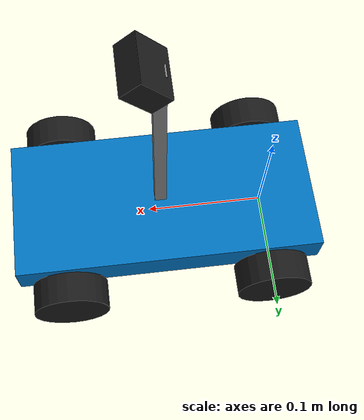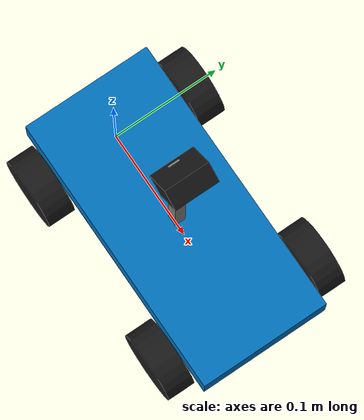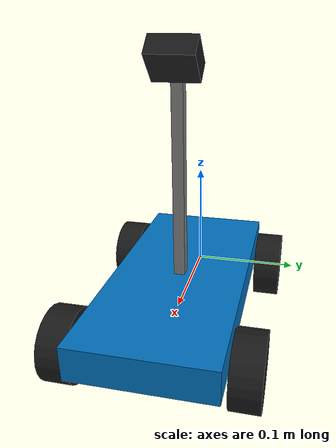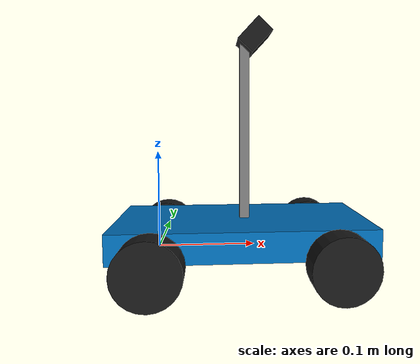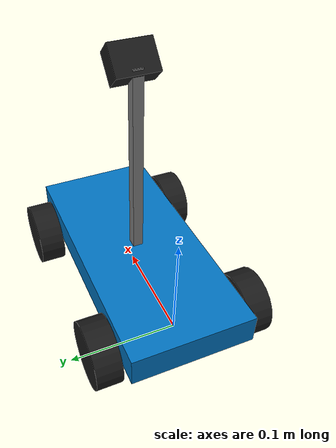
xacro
<?xml version="1.0"?>
<robot name="nxp_cup_car" xmlns:xacro="http://www.ros.org/wiki/xacro">

  <!-- ===== Parameters (measure these on the real car) ===== -->
  <xacro:arg name="camera_type" default="area"/>
  <xacro:arg name="camera_height" default="0.25"/>   <!-- lens above ground, m -->
  <xacro:arg name="camera_x" default="0.10"/>        <!-- lens ahead of rear axle, m -->
  <xacro:arg name="camera_pitch" default="0.75"/>    <!-- tilt down from horizontal, rad -->
  <xacro:arg name="camera_hfov" default="1.6"/>      <!-- horizontal field of view, rad -->
  <xacro:arg name="camera_width" default="320"/>
  <xacro:arg name="camera_height_px" default="240"/>
  <xacro:arg name="camera_rate" default="30"/>

  <xacro:property name="wheel_base" value="0.175"/>       <!-- rear axle to front axle -->
  <xacro:property name="wheel_separation" value="0.150"/> <!-- left to right wheel centre -->
  <xacro:property name="wheel_radius" value="0.032"/>
  <xacro:property name="wheel_width" value="0.025"/>
  <xacro:property name="wheel_mass" value="0.05"/>
  <xacro:property name="steering_limit" value="0.45"/>    <!-- rad, about 26 deg -->

  <xacro:property name="chassis_length" value="0.26"/>
  <xacro:property name="chassis_width" value="0.12"/>
  <xacro:property name="chassis_height" value="0.03"/>
  <xacro:property name="chassis_mass" value="0.9"/>        <!-- incl. battery and boards -->

  <xacro:property name="max_speed" value="3.0"/>
  <xacro:property name="max_accel" value="4.0"/>

  <xacro:property name="cam_h" value="$(arg camera_height)"/>
  <xacro:property name="cam_x" value="$(arg camera_x)"/>
  <xacro:property name="cam_pitch" value="$(arg camera_pitch)"/>
  <xacro:property name="cam_type" value="$(arg camera_type)"/>
  <xacro:if value="${cam_type == 'linescan'}">
    <!-- TSL1401: one row of 128 pixels. A 128 x 1 render with square pixels gives the
         same thin strip of ground the real sensor (63.5 x 55.5 um pixels) sees. -->
    <xacro:property name="img_w" value="128"/>
    <xacro:property name="img_h" value="1"/>
    <xacro:property name="img_rate" value="100"/>
    <xacro:property name="img_format" value="L8"/>
  </xacro:if>
  <xacro:unless value="${cam_type == 'linescan'}">
    <xacro:property name="img_w" value="$(arg camera_width)"/>
    <xacro:property name="img_h" value="$(arg camera_height_px)"/>
    <xacro:property name="img_rate" value="$(arg camera_rate)"/>
    <xacro:property name="img_format" value="R8G8B8"/>
  </xacro:unless>

  <!-- ===== Helpers ===== -->
  <xacro:macro name="box_inertia" params="m x y z">
    <inertia ixx="${m*(y*y+z*z)/12}" ixy="0" ixz="0"
             iyy="${m*(x*x+z*z)/12}" iyz="0" izz="${m*(x*x+y*y)/12}"/>
  </xacro:macro>
  <xacro:macro name="cyl_inertia" params="m r h">
    <!-- cylinder with its axis along the link's y axis (wheel spin axis) -->
    <inertia ixx="${m*(3*r*r+h*h)/12}" ixy="0" ixz="0"
             iyy="${m*r*r/2}" iyz="0" izz="${m*(3*r*r+h*h)/12}"/>
  </xacro:macro>

  <material name="black"><color rgba="0.1 0.1 0.1 1"/></material>
  <material name="blue"><color rgba="0.0 0.45 0.75 1"/></material>
  <material name="grey"><color rgba="0.5 0.5 0.5 1"/></material>

  <!-- ===== Chassis =====
       base_link is the root and sits at the rear axle centre, wheel_radius above
       the ground (standard for Ackermann odometry; Gazebo publishes odom -> base_link). -->

  <link name="base_link">
    <visual>
      <origin xyz="${wheel_base/2} 0 ${chassis_height/2}"/>
      <geometry><box size="${chassis_length} ${chassis_width} ${chassis_height}"/></geometry>
      <material name="blue"/>
    </visual>
    <collision>
      <origin xyz="${wheel_base/2} 0 ${chassis_height/2}"/>
      <geometry><box size="${chassis_length} ${chassis_width} ${chassis_height}"/></geometry>
    </collision>
    <inertial>
      <origin xyz="${wheel_base/2} 0 ${chassis_height/2}"/>
      <mass value="${chassis_mass}"/>
      <xacro:box_inertia m="${chassis_mass}" x="${chassis_length}" y="${chassis_width}" z="${chassis_height}"/>
    </inertial>
  </link>

  <!-- ===== Wheels ===== -->
  <xacro:macro name="wheel_link" params="name">
    <link name="${name}">
      <visual>
        <origin rpy="${pi/2} 0 0"/>
        <geometry><cylinder radius="${wheel_radius}" length="${wheel_width}"/></geometry>
        <material name="black"/>
      </visual>
      <collision>
        <origin rpy="${pi/2} 0 0"/>
        <geometry><cylinder radius="${wheel_radius}" length="${wheel_width}"/></geometry>
      </collision>
      <inertial>
        <mass value="${wheel_mass}"/>
        <xacro:cyl_inertia m="${wheel_mass}" r="${wheel_radius}" h="${wheel_width}"/>
      </inertial>
    </link>
    <gazebo reference="${name}">
      <mu1>1.0</mu1>
      <mu2>1.0</mu2>
    </gazebo>
  </xacro:macro>

  <!-- rear: driven -->
  <xacro:macro name="rear_wheel" params="side y">
    <xacro:wheel_link name="rear_${side}_wheel"/>
    <joint name="rear_${side}_wheel_joint" type="continuous">
      <parent link="base_link"/>
      <child link="rear_${side}_wheel"/>
      <origin xyz="0 ${y} 0"/>
      <axis xyz="0 1 0"/>
    </joint>
  </xacro:macro>

  <!-- front: steering knuckle (revolute about z) + free-spinning wheel -->
  <xacro:macro name="front_wheel" params="side y">
    <link name="front_${side}_steer">
      <inertial>
        <mass value="0.01"/>
        <inertia ixx="1e-6" ixy="0" ixz="0" iyy="1e-6" iyz="0" izz="1e-6"/>
      </inertial>
    </link>
    <joint name="front_${side}_steer_joint" type="revolute">
      <parent link="base_link"/>
      <child link="front_${side}_steer"/>
      <origin xyz="${wheel_base} ${y} 0"/>
      <axis xyz="0 0 1"/>
      <limit lower="${-steering_limit}" upper="${steering_limit}" effort="5" velocity="10"/>
    </joint>
    <xacro:wheel_link name="front_${side}_wheel"/>
    <joint name="front_${side}_wheel_joint" type="continuous">
      <parent link="front_${side}_steer"/>
      <child link="front_${side}_wheel"/>
      <axis xyz="0 1 0"/>
    </joint>
  </xacro:macro>

  <xacro:rear_wheel side="left" y="${wheel_separation/2}"/>
  <xacro:rear_wheel side="right" y="${-wheel_separation/2}"/>
  <xacro:front_wheel side="left" y="${wheel_separation/2}"/>
  <xacro:front_wheel side="right" y="${-wheel_separation/2}"/>

  <!-- ===== Camera mast + camera ===== -->
  <link name="camera_mast">
    <visual>
      <origin xyz="0 0 ${(cam_h - wheel_radius - chassis_height)/2}"/>
      <geometry><box size="0.01 0.01 ${cam_h - wheel_radius - chassis_height}"/></geometry>
      <material name="grey"/>
    </visual>
    <inertial>
      <mass value="0.02"/>
      <inertia ixx="1e-5" ixy="0" ixz="0" iyy="1e-5" iyz="0" izz="1e-6"/>
    </inertial>
  </link>
  <joint name="camera_mast_joint" type="fixed">
    <parent link="base_link"/>
    <child link="camera_mast"/>
    <origin xyz="${cam_x - 0.01} 0 ${chassis_height}"/>
  </joint>

  <!-- camera_link: x forward along the optical axis (Gazebo convention) -->
  <link name="camera_link">
    <visual>
      <geometry><box size="0.02 0.04 0.03"/></geometry>
      <material name="black"/>
    </visual>
    <inertial>
      <mass value="0.02"/>
      <inertia ixx="1e-6" ixy="0" ixz="0" iyy="1e-6" iyz="0" izz="1e-6"/>
    </inertial>
  </link>
  <joint name="camera_joint" type="fixed">
    <parent link="base_link"/>
    <child link="camera_link"/>
    <origin xyz="${cam_x} 0 ${cam_h - wheel_radius}" rpy="0 ${cam_pitch} 0"/>
  </joint>

  <!-- optical frame (z forward, x right, y down) for ROS image consumers -->
  <link name="camera_optical_frame"/>
  <joint name="camera_optical_joint" type="fixed">
    <parent link="camera_link"/>
    <child link="camera_optical_frame"/>
    <origin rpy="${-pi/2} 0 ${-pi/2}"/>
  </joint>

  <gazebo reference="camera_link">
    <sensor name="camera" type="camera">
      <always_on>true</always_on>
      <update_rate>${img_rate}</update_rate>
      <visualize>true</visualize>
      <topic>/camera/image_raw</topic>
      <frame_id>camera_optical_frame</frame_id>
      <camera>
        <camera_info_topic>/camera/camera_info</camera_info_topic>
        <horizontal_fov>$(arg camera_hfov)</horizontal_fov>
        <image>
          <width>${img_w}</width>
          <height>${img_h}</height>
          <format>${img_format}</format>
        </image>
        <clip><near>0.02</near><far>10.0</far></clip>
        <noise>
          <type>gaussian</type>
          <mean>0.0</mean>
          <stddev>0.007</stddev>
        </noise>
      </camera>
    </sensor>
  </gazebo>

  <!-- ===== IMU (on the main board) ===== -->
  <link name="imu_link"/>
  <joint name="imu_joint" type="fixed">
    <parent link="base_link"/>
    <child link="imu_link"/>
    <origin xyz="${wheel_base/2} 0 ${chassis_height}"/>
  </joint>
  <gazebo reference="imu_link">
    <sensor name="imu" type="imu">
      <always_on>true</always_on>
      <update_rate>100</update_rate>
      <topic>/imu</topic>
      <frame_id>imu_link</frame_id>
    </sensor>
  </gazebo>

  <!-- ===== Gazebo systems ===== -->
  <gazebo>
    <plugin filename="gz-sim-ackermann-steering-system" name="gz::sim::systems::AckermannSteering">
      <left_joint>rear_left_wheel_joint</left_joint>
      <right_joint>rear_right_wheel_joint</right_joint>
      <left_steering_joint>front_left_steer_joint</left_steering_joint>
      <right_steering_joint>front_right_steer_joint</right_steering_joint>
      <kingpin_width>${wheel_separation}</kingpin_width>
      <steering_limit>${steering_limit}</steering_limit>
      <wheel_base>${wheel_base}</wheel_base>
      <wheel_separation>${wheel_separation}</wheel_separation>
      <wheel_radius>${wheel_radius}</wheel_radius>
      <!-- steering servo speed: P gain on steering angle error (default 1 is far too slow) -->
      <steer_p_gain>15.0</steer_p_gain>
      <min_velocity>${-max_speed}</min_velocity>
      <max_velocity>${max_speed}</max_velocity>
      <min_acceleration>${-max_accel}</min_acceleration>
      <max_acceleration>${max_accel}</max_acceleration>
      <topic>/cmd_vel</topic>
      <odom_topic>/odom</odom_topic>
      <tf_topic>/tf</tf_topic>
      <frame_id>odom</frame_id>
      <child_frame_id>base_link</child_frame_id>
      <odom_publish_frequency>50</odom_publish_frequency>
    </plugin>

    <!-- Ground truth: the car's true world pose, for lap timing and the lap monitor.
         Its TF goes to a topic we don't bridge, so it never fights the wheel odometry. -->
    <plugin filename="gz-sim-odometry-publisher-system" name="gz::sim::systems::OdometryPublisher">
      <odom_frame>world</odom_frame>
      <robot_base_frame>base_link</robot_base_frame>
      <odom_topic>/ground_truth/odom</odom_topic>
      <tf_topic>/ground_truth/tf</tf_topic>
      <dimensions>3</dimensions>
      <odom_publish_frequency>50</odom_publish_frequency>
    </plugin>

    <plugin filename="gz-sim-joint-state-publisher-system" name="gz::sim::systems::JointStatePublisher">
      <topic>/joint_states</topic>
    </plugin>
  </gazebo>
</robot>
